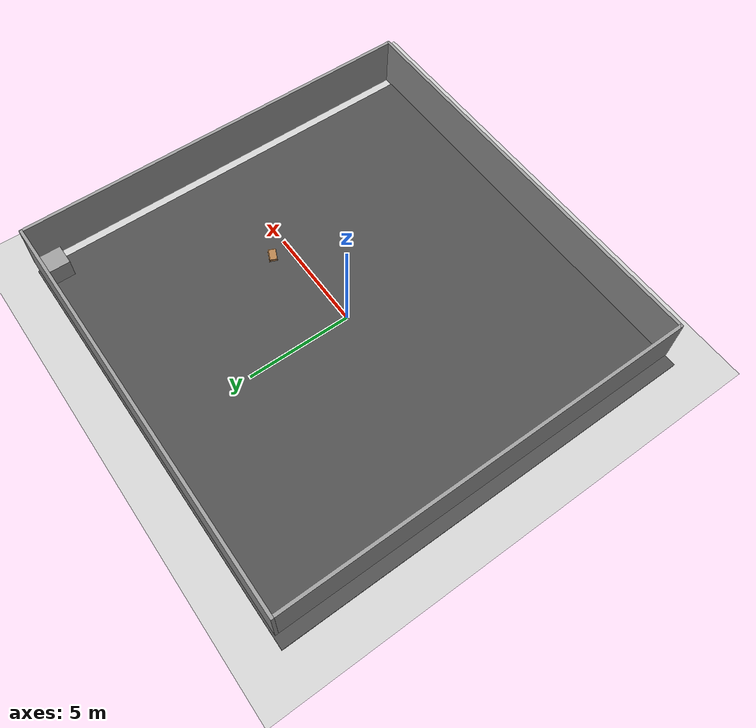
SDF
<sdf version="1.7">
 <world name="default">
  <model name="ground_plane">
   <static>1</static>
   <link name="link">
    <collision name="collision">
     <geometry><plane><normal>0 0 1</normal><size>100 100</size></plane></geometry>
     <surface><friction><ode><mu>100</mu><mu2>50</mu2></ode></friction></surface>
    </collision>
    <visual name="visual">
     <cast_shadows>0</cast_shadows>
     <geometry><plane><normal>0 0 1</normal><size>100 100</size></plane></geometry>
     <material>
      <script><uri>file://media/materials/scripts/gazebo.material</uri><name>Gazebo/Grey</name></script>
     </material>
    </visual>
   </link>
  </model>
  <model name="asphalt_plane">
   <static>1</static>
   <link name="link">
    <collision name="collision"><geometry><box><size>20 20 0.1</size></box></geometry></collision>
    <visual name="visual">
     <cast_shadows>0</cast_shadows>
     <geometry><box><size>20 20 0.1</size></box></geometry>
     <material>
      <script>
       <uri>model://asphalt_plane/materials/scripts</uri>
       <uri>model://asphalt_plane/materials/textures</uri>
       <name>vrc/asphalt</name>
      </script>
     </material>
    </visual>
   </link>
   <pose>0.027118 -0.028406 0 0 -0 0</pose>
  </model>
  <model name="4Walls">
   <pose>0.588305 -0.107793 0 0 -0 0</pose>
   <link name="Wall_17">
    <collision name="Wall_17_Collision">
     <geometry><box><size>20 0.15 2.5</size></box></geometry>
     <pose>0 0 1.25 0 -0 0</pose>
    </collision>
    <visual name="Wall_17_Visual">
     <pose>0 0 1.25 0 -0 0</pose>
     <geometry><box><size>20 0.15 2.5</size></box></geometry>
     <material>
      <script><uri>file://media/materials/scripts/gazebo.material</uri><name>Gazebo/Grey</name></script>
      <ambient>1 1 1 1</ambient>
     </material>
     <meta><layer>0</layer></meta>
    </visual>
    <pose>0 -9.925 0 0 -0 0</pose>
   </link>
   <link name="Wall_19">
    <collision name="Wall_19_Collision">
     <geometry><box><size>20 0.15 2.5</size></box></geometry>
     <pose>0 0 1.25 0 -0 0</pose>
    </collision>
    <visual name="Wall_19_Visual">
     <pose>0 0 1.25 0 -0 0</pose>
     <geometry><box><size>20 0.15 2.5</size></box></geometry>
     <material>
      <script><uri>file://media/materials/scripts/gazebo.material</uri><name>Gazebo/Grey</name></script>
      <ambient>1 1 1 1</ambient>
     </material>
     <meta><layer>0</layer></meta>
    </visual>
    <pose>9.925 -0 0 0 -0 1.5708</pose>
   </link>
   <link name="Wall_21">
    <collision name="Wall_21_Collision">
     <geometry><box><size>20 0.15 2.5</size></box></geometry>
     <pose>0 0 1.25 0 -0 0</pose>
    </collision>
    <visual name="Wall_21_Visual">
     <pose>0 0 1.25 0 -0 0</pose>
     <geometry><box><size>20 0.15 2.5</size></box></geometry>
     <material>
      <script><uri>file://media/materials/scripts/gazebo.material</uri><name>Gazebo/Grey</name></script>
      <ambient>1 1 1 1</ambient>
     </material>
     <meta><layer>0</layer></meta>
    </visual>
    <pose>0 9.925 0 0 -0 3.14159</pose>
   </link>
   <link name="Wall_22">
    <collision name="Wall_22_Collision">
     <geometry><box><size>20 0.15 2.5</size></box></geometry>
     <pose>0 0 1.25 0 -0 0</pose>
    </collision>
    <visual name="Wall_22_Visual">
     <pose>0 0 1.25 0 -0 0</pose>
     <geometry><box><size>20 0.15 2.5</size></box></geometry>
     <material>
      <script><uri>file://media/materials/scripts/gazebo.material</uri><name>Gazebo/Grey</name></script>
      <ambient>1 1 1 1</ambient>
     </material>
     <meta><layer>0</layer></meta>
    </visual>
    <pose>-9.925 -0 0 0 -0 -1.5708</pose>
   </link>
   <static>1</static>
  </model>
  <model name="unit_box_clone">
   <pose>9.42465 9.16406 0.550002 -4e-06 0 7e-06</pose>
   <link name="link">
    <inertial>
     <mass>1</mass>
     <inertia>
      <ixx>0.166667</ixx>
      <ixy>0</ixy>
      <ixz>0</ixz>
      <iyy>0.166667</iyy>
      <iyz>0</iyz>
      <izz>0.166667</izz>
     </inertia>
    </inertial>
    <collision name="collision"><geometry><box><size>1 1 1</size></box></geometry></collision>
    <visual name="visual">
     <geometry><box><size>1 1 1</size></box></geometry>
     <material>
      <script><name>Gazebo/Grey</name><uri>file://media/materials/scripts/gazebo.material</uri></script>
     </material>
    </visual>
   </link>
  </model>
  <model name="wooden_case">
   <link name="base">
    <pose>0 0 0.024 0 -0 0</pose>
    <inertial>
     <pose>-0.022184 0 0.171592 0 -0 0</pose>
     <mass>3.96264</mass>
     <inertia>
      <ixx>0.213536</ixx>
      <ixy>0</ixy>
      <ixz>0.000779377</ixz>
      <iyy>0.0708943</iyy>
      <iyz>0</iyz>
      <izz>0.154604</izz>
     </inertia>
    </inertial>
    <collision name="collision_back">
     <pose>-0.053975 0 0.1778 0 -0 0</pose>
     <geometry><box><size>0.01905 0.5461 0.3175</size></box></geometry>
     <surface>
      <contact>
       <poissons_ratio>0.347</poissons_ratio>
       <elastic_modulus>8.8e+09</elastic_modulus>
       <ode><kp>100000</kp><kd>100</kd><max_vel>100</max_vel><min_depth>0.001</min_depth></ode>
      </contact>
      <friction>
       <torsional>
        <coefficient>1</coefficient>
        <use_patch_radius>0</use_patch_radius>
        <surface_radius>0.01</surface_radius>
       </torsional>
      </friction>
     </surface>
    </collision>
    <visual name="visual_back">
     <pose>-0.053975 0 0.1778 0 -0 0</pose>
     <geometry><box><size>0.01905 0.5461 0.3175</size></box></geometry>
     <material>
      <script><uri>file://media/materials/scripts/gazebo.material</uri><name>Gazebo/Wood</name></script>
     </material>
    </visual>
    <collision name="collision_bottom">
     <pose>0 0 0.009525 0 -0 0</pose>
     <geometry><box><size>0.127 0.5842 0.01905</size></box></geometry>
     <surface>
      <contact>
       <poissons_ratio>0.347</poissons_ratio>
       <elastic_modulus>8.8e+09</elastic_modulus>
       <ode><kp>100000</kp><kd>100</kd><max_vel>100</max_vel><min_depth>0.001</min_depth></ode>
      </contact>
      <friction>
       <torsional>
        <coefficient>1</coefficient>
        <use_patch_radius>0</use_patch_radius>
        <surface_radius>0.01</surface_radius>
       </torsional>
      </friction>
     </surface>
    </collision>
    <visual name="visual_bottom">
     <pose>0 0 0.009525 0 -0 0</pose>
     <geometry><box><size>0.127 0.5842 0.01905</size></box></geometry>
     <material>
      <script><uri>file://media/materials/scripts/gazebo.material</uri><name>Gazebo/Wood</name></script>
     </material>
    </visual>
    <collision name="collision_top">
     <pose>0 0 0.346075 0 -0 0</pose>
     <geometry><box><size>0.127 0.5842 0.01905</size></box></geometry>
     <surface>
      <contact>
       <poissons_ratio>0.347</poissons_ratio>
       <elastic_modulus>8.8e+09</elastic_modulus>
       <ode><kp>100000</kp><kd>100</kd><max_vel>100</max_vel><min_depth>0.001</min_depth></ode>
      </contact>
      <friction>
       <torsional>
        <coefficient>1</coefficient>
        <use_patch_radius>0</use_patch_radius>
        <surface_radius>0.01</surface_radius>
       </torsional>
      </friction>
     </surface>
    </collision>
    <visual name="visual_top">
     <pose>0 0 0.346075 0 -0 0</pose>
     <geometry><box><size>0.127 0.5842 0.01905</size></box></geometry>
     <material>
      <script><uri>file://media/materials/scripts/gazebo.material</uri><name>Gazebo/Wood</name></script>
     </material>
    </visual>
    <collision name="collision_left">
     <pose>0 -0.282575 0.1778 0 -0 0</pose>
     <geometry><box><size>0.127 0.01905 0.3175</size></box></geometry>
     <surface>
      <contact>
       <poissons_ratio>0.347</poissons_ratio>
       <elastic_modulus>8.8e+09</elastic_modulus>
       <ode><kp>100000</kp><kd>100</kd><max_vel>100</max_vel><min_depth>0.001</min_depth></ode>
      </contact>
      <friction>
       <torsional>
        <coefficient>1</coefficient>
        <use_patch_radius>0</use_patch_radius>
        <surface_radius>0.01</surface_radius>
       </torsional>
      </friction>
     </surface>
    </collision>
    <visual name="visual_left">
     <pose>0 -0.282575 0.1778 0 -0 0</pose>
     <geometry><box><size>0.127 0.01905 0.3175</size></box></geometry>
     <material>
      <script><uri>file://media/materials/scripts/gazebo.material</uri><name>Gazebo/Wood</name></script>
     </material>
    </visual>
    <collision name="collision_right">
     <pose>0 0.282575 0.1778 0 -0 0</pose>
     <geometry><box><size>0.127 0.01905 0.3175</size></box></geometry>
     <surface>
      <contact>
       <poissons_ratio>0.347</poissons_ratio>
       <elastic_modulus>8.8e+09</elastic_modulus>
       <ode><kp>100000</kp><kd>100</kd><max_vel>100</max_vel><min_depth>0.001</min_depth></ode>
      </contact>
      <friction>
       <torsional>
        <coefficient>1</coefficient>
        <use_patch_radius>0</use_patch_radius>
        <surface_radius>0.01</surface_radius>
       </torsional>
      </friction>
     </surface>
    </collision>
    <visual name="visual_right">
     <pose>0 0.282575 0.1778 0 -0 0</pose>
     <geometry><box><size>0.127 0.01905 0.3175</size></box></geometry>
     <material>
      <script><uri>file://media/materials/scripts/gazebo.material</uri><name>Gazebo/Wood</name></script>
     </material>
    </visual>
    <collision name="collision_block_left">
     <pose>0.0095 -0.2151 -0.012 0 -0 0</pose>
     <geometry><box><size>0.108 0.05 0.024</size></box></geometry>
     <surface>
      <contact>
       <poissons_ratio>0.347</poissons_ratio>
       <elastic_modulus>8.8e+09</elastic_modulus>
       <ode><kp>100000</kp><kd>100</kd><max_vel>100</max_vel><min_depth>0.001</min_depth></ode>
      </contact>
      <friction>
       <torsional>
        <coefficient>1</coefficient>
        <use_patch_radius>0</use_patch_radius>
        <surface_radius>0.01</surface_radius>
       </torsional>
      </friction>
     </surface>
    </collision>
    <visual name="visual_block_left">
     <pose>0.0095 -0.2151 -0.012 0 -0 0</pose>
     <geometry><box><size>0.108 0.05 0.024</size></box></geometry>
     <material>
      <script><uri>file://media/materials/scripts/gazebo.material</uri><name>Gazebo/Wood</name></script>
     </material>
    </visual>
    <collision name="collision_block_right">
     <pose>0.0095 0.2151 -0.012 0 -0 0</pose>
     <geometry><box><size>0.108 0.05 0.024</size></box></geometry>
     <surface>
      <contact>
       <poissons_ratio>0.347</poissons_ratio>
       <elastic_modulus>8.8e+09</elastic_modulus>
       <ode><kp>100000</kp><kd>100</kd><max_vel>100</max_vel><min_depth>0.001</min_depth></ode>
      </contact>
      <friction>
       <torsional>
        <coefficient>1</coefficient>
        <use_patch_radius>0</use_patch_radius>
        <surface_radius>0.01</surface_radius>
       </torsional>
      </friction>
     </surface>
    </collision>
    <visual name="visual_block_right">
     <pose>0.0095 0.2151 -0.012 0 -0 0</pose>
     <geometry><box><size>0.108 0.05 0.024</size></box></geometry>
     <material>
      <script><uri>file://media/materials/scripts/gazebo.material</uri><name>Gazebo/Wood</name></script>
     </material>
    </visual>
   </link>
   <link name="lid">
    <pose>0.243775 0 0.009525 0 -0 0</pose>
    <inertial>
     <mass>1.97874</mass>
     <inertia>
      <ixx>0.0563367</ixx>
      <ixy>0</ixy>
      <ixz>0</ixz>
      <iyy>0.020911</iyy>
      <iyz>0</iyz>
      <izz>0.0771281</izz>
     </inertia>
    </inertial>
    <collision name="collision">
     <geometry><box><size>0.3556 0.5842 0.01905</size></box></geometry>
     <surface>
      <contact>
       <poissons_ratio>0.347</poissons_ratio>
       <elastic_modulus>8.8e+09</elastic_modulus>
       <ode><kp>100000</kp><kd>100</kd><max_vel>100</max_vel><min_depth>0.001</min_depth></ode>
      </contact>
      <friction>
       <torsional>
        <coefficient>1</coefficient>
        <use_patch_radius>0</use_patch_radius>
        <surface_radius>0.01</surface_radius>
       </torsional>
      </friction>
     </surface>
    </collision>
    <visual name="visual">
     <geometry><box><size>0.3556 0.5842 0.01905</size></box></geometry>
     <material>
      <script><uri>file://media/materials/scripts/gazebo.material</uri><name>Gazebo/Wood</name></script>
     </material>
    </visual>
    <visual name="tee_nut_1">
     <pose>0.122 -0.216 0 0 -0 0</pose>
     <geometry><cylinder><radius>0.00635</radius><length>0.0192405</length></cylinder></geometry>
     <material>
      <script><uri>file://media/materials/scripts/gazebo.material</uri><name>Gazebo/Grey</name></script>
     </material>
    </visual>
    <visual name="tee_nut_2">
     <pose>0.122 -0.088 0 0 -0 0</pose>
     <geometry><cylinder><radius>0.00635</radius><length>0.0192405</length></cylinder></geometry>
     <material>
      <script><uri>file://media/materials/scripts/gazebo.material</uri><name>Gazebo/Grey</name></script>
     </material>
    </visual>
    <visual name="tee_nut_3">
     <pose>0.122 0.088 0 0 -0 0</pose>
     <geometry><cylinder><radius>0.00635</radius><length>0.0192405</length></cylinder></geometry>
     <material>
      <script><uri>file://media/materials/scripts/gazebo.material</uri><name>Gazebo/Grey</name></script>
     </material>
    </visual>
    <visual name="tee_nut_4">
     <pose>0.122 0.216 0 0 -0 0</pose>
     <geometry><cylinder><radius>0.00635</radius><length>0.0192405</length></cylinder></geometry>
     <material>
      <script><uri>file://media/materials/scripts/gazebo.material</uri><name>Gazebo/Grey</name></script>
     </material>
    </visual>
   </link>
   <joint name="lid_hinge" type="revolute">
    <pose>-0.1778 0 0.01905 0 -0 0</pose>
    <parent>base</parent>
    <child>lid</child>
    <axis>
     <xyz>0 1 0</xyz>
     <limit><upper>0.523599</upper><lower>-1.5708</lower></limit>
     <dynamics><spring_reference>0</spring_reference><spring_stiffness>0</spring_stiffness></dynamics>
    </axis>
   </joint>
   <pose>4.6576 1.05661 0.143399 0 1.57077 -1.99628</pose>
  </model>
 </world>
</sdf>
